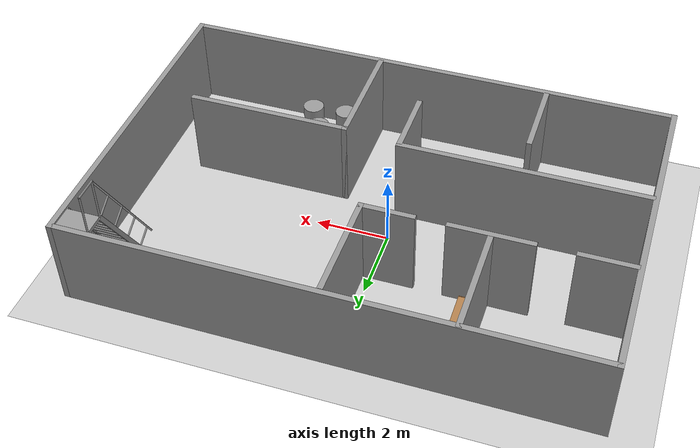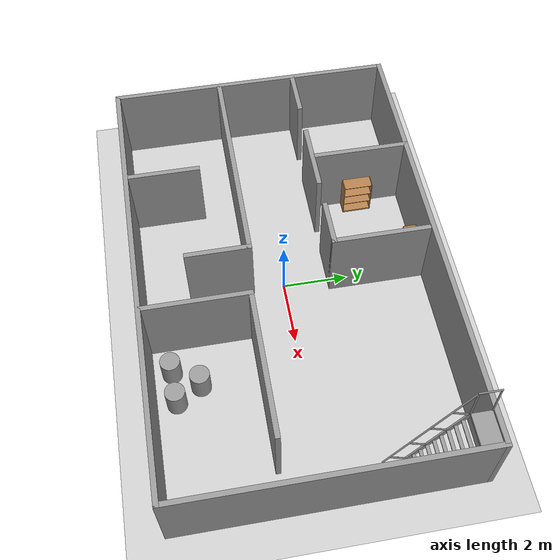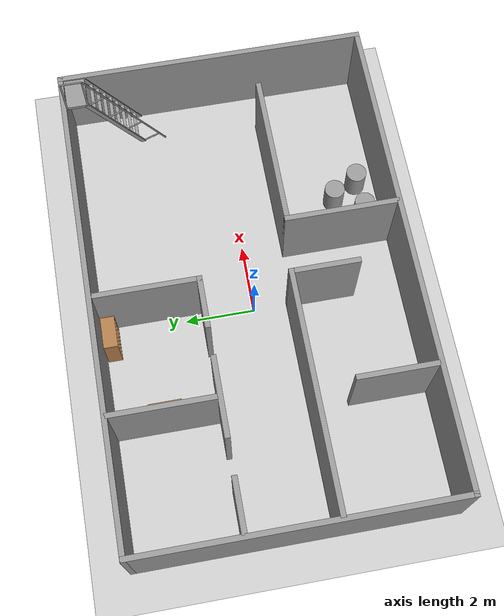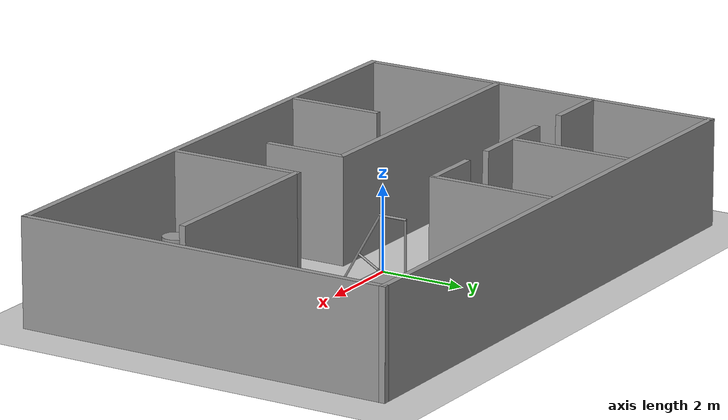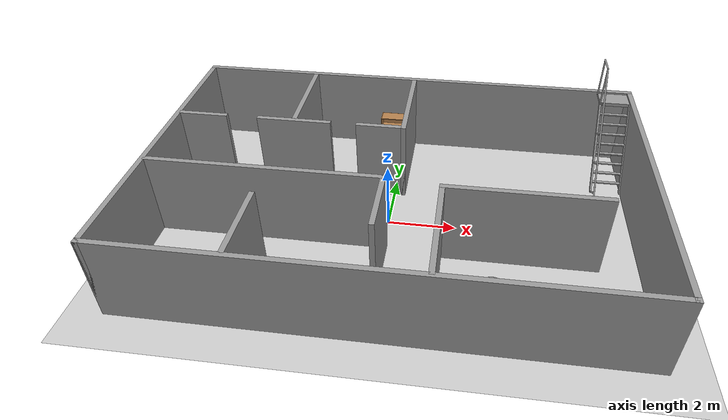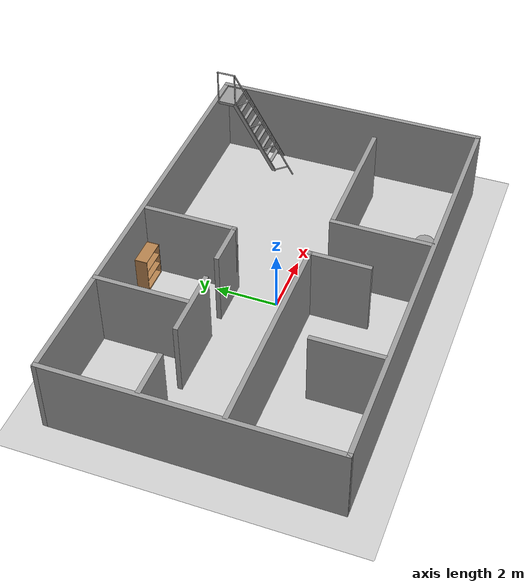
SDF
<sdf version="1.7">
 <world name="default">
  <light name="sun" type="directional">
   <pose>0 0 10 0 -0 0</pose>
   <diffuse>0.8 0.8 0.8 1</diffuse>
   <specular>0.2 0.2 0.2 1</specular>
   <attenuation>
    <range>1000</range>
    <constant>0.9</constant>
    <linear>0.01</linear>
    <quadratic>0.001</quadratic>
   </attenuation>
   <direction>-0.5 0.1 -0.9</direction>
   <spot><inner_angle>0</inner_angle><outer_angle>0</outer_angle><falloff>0</falloff></spot>
  </light>
  <model name="ground_plane">
   <static>1</static>
   <link name="link">
    <collision name="collision">
     <geometry><plane><normal>0 0 1</normal><size>100 100</size></plane></geometry>
     <surface>
      <contact><collide_bitmask>65535</collide_bitmask></contact>
      <friction><ode><mu>100</mu><mu2>50</mu2></ode></friction>
     </surface>
    </collision>
    <visual name="visual">
     <cast_shadows>0</cast_shadows>
     <geometry><plane><normal>0 0 1</normal><size>100 100</size></plane></geometry>
     <material>
      <script><uri>file://media/materials/scripts/gazebo.material</uri><name>Gazebo/Grey</name></script>
     </material>
    </visual>
   </link>
  </model>
  <gravity>0 0 -9.8</gravity>
  <magnetic_field>6e-06 2.3e-05 -4.2e-05</magnetic_field>
  <atmosphere type="adiabatic"/>
  <physics type="ode">
   <max_step_size>0.001</max_step_size>
   <real_time_factor>1</real_time_factor>
   <real_time_update_rate>1000</real_time_update_rate>
  </physics>
  <scene><ambient>0.4 0.4 0.4 1</ambient><background>0.7 0.7 0.7 1</background><shadows>1</shadows></scene>
  <spherical_coordinates>
   <surface_model>EARTH_WGS84</surface_model>
   <latitude_deg>0</latitude_deg>
   <longitude_deg>0</longitude_deg>
   <elevation>0</elevation>
   <heading_deg>0</heading_deg>
  </spherical_coordinates>
  <model name="lager">
   <pose>0.258134 0.029976 0 0 -0 0</pose>
   <link name="Wall_0">
    <collision name="Wall_0_Collision">
     <geometry><box><size>14 0.15 2.5</size></box></geometry>
     <pose>0 0 1.25 0 -0 0</pose>
    </collision>
    <visual name="Wall_0_Visual">
     <pose>0 0 1.25 0 -0 0</pose>
     <geometry><box><size>14 0.15 2.5</size></box></geometry>
     <material>
      <script><uri>file://media/materials/scripts/gazebo.material</uri><name>Gazebo/Grey</name></script>
      <ambient>1 1 1 1</ambient>
     </material>
     <meta><layer>0</layer></meta>
    </visual>
    <pose>0 -4.425 0 0 -0 0</pose>
   </link>
   <link name="Wall_1">
    <collision name="Wall_1_Collision">
     <geometry><box><size>9 0.15 2.5</size></box></geometry>
     <pose>0 0 1.25 0 -0 0</pose>
    </collision>
    <visual name="Wall_1_Visual">
     <pose>0 0 1.25 0 -0 0</pose>
     <geometry><box><size>9 0.15 2.5</size></box></geometry>
     <material>
      <script><uri>file://media/materials/scripts/gazebo.material</uri><name>Gazebo/Grey</name></script>
      <ambient>1 1 1 1</ambient>
     </material>
     <meta><layer>0</layer></meta>
    </visual>
    <pose>6.925 0 0 0 -0 1.5708</pose>
   </link>
   <link name="Wall_12">
    <collision name="Wall_12_Collision">
     <geometry><box><size>3 0.15 2.5</size></box></geometry>
     <pose>0 0 1.25 0 -0 0</pose>
    </collision>
    <visual name="Wall_12_Visual">
     <pose>0 0 1.25 0 -0 0</pose>
     <geometry><box><size>3 0.15 2.5</size></box></geometry>
     <material>
      <script><uri>file://media/materials/scripts/gazebo.material</uri><name>Gazebo/Grey</name></script>
      <ambient>1 1 1 1</ambient>
     </material>
     <meta><layer>0</layer></meta>
    </visual>
    <pose>-3.31696 2.9739 0 0 -0 -1.5708</pose>
   </link>
   <link name="Wall_14">
    <collision name="Wall_14_Collision">
     <geometry><box><size>1.5 0.15 2.5</size></box></geometry>
     <pose>0 0 1.25 0 -0 0</pose>
    </collision>
    <visual name="Wall_14_Visual">
     <pose>0 0 1.25 0 -0 0</pose>
     <geometry><box><size>1.5 0.15 2.5</size></box></geometry>
     <material>
      <script><uri>file://media/materials/scripts/gazebo.material</uri><name>Gazebo/Grey</name></script>
      <ambient>1 1 1 1</ambient>
     </material>
     <meta><layer>0</layer></meta>
    </visual>
    <pose>-0.672064 1.41979 0 0 -0 0</pose>
   </link>
   <link name="Wall_17">
    <collision name="Wall_17_Collision">
     <geometry><box><size>3 0.15 2.5</size></box></geometry>
     <pose>0 0 1.25 0 -0 0</pose>
    </collision>
    <visual name="Wall_17_Visual">
     <pose>0 0 1.25 0 -0 0</pose>
     <geometry><box><size>3 0.15 2.5</size></box></geometry>
     <material>
      <script><uri>file://media/materials/scripts/gazebo.material</uri><name>Gazebo/Grey</name></script>
      <ambient>1 1 1 1</ambient>
     </material>
     <meta><layer>0</layer></meta>
    </visual>
    <pose>0.002936 2.84479 0 0 -0 1.5708</pose>
   </link>
   <link name="Wall_2">
    <collision name="Wall_2_Collision">
     <geometry><box><size>14 0.15 2.5</size></box></geometry>
     <pose>0 0 1.25 0 -0 0</pose>
    </collision>
    <visual name="Wall_2_Visual">
     <pose>0 0 1.25 0 -0 0</pose>
     <geometry><box><size>14 0.15 2.5</size></box></geometry>
     <material>
      <script><uri>file://media/materials/scripts/gazebo.material</uri><name>Gazebo/Grey</name></script>
      <ambient>1 1 1 1</ambient>
     </material>
     <meta><layer>0</layer></meta>
    </visual>
    <pose>0 4.425 0 0 -0 3.14159</pose>
   </link>
   <link name="Wall_20">
    <collision name="Wall_20_Collision">
     <geometry><box><size>6.75 0.15 2.5</size></box></geometry>
     <pose>0 0 1.25 0 -0 0</pose>
    </collision>
    <visual name="Wall_20_Visual">
     <pose>0 0 1.25 0 -0 0</pose>
     <geometry><box><size>6.75 0.15 2.5</size></box></geometry>
     <material>
      <script><uri>file://media/materials/scripts/gazebo.material</uri><name>Gazebo/Grey</name></script>
      <ambient>1 1 1 1</ambient>
     </material>
     <meta><layer>0</layer></meta>
    </visual>
    <pose>-3.52683 -1.05818 0 0 -0 0</pose>
   </link>
   <link name="Wall_21">
    <collision name="Wall_21_Collision">
     <geometry><box><size>2 0.15 2.5</size></box></geometry>
     <pose>0 0 1.25 0 -0 0</pose>
    </collision>
    <visual name="Wall_21_Visual">
     <pose>0 0 1.25 0 -0 0</pose>
     <geometry><box><size>2 0.15 2.5</size></box></geometry>
     <material>
      <script><uri>file://media/materials/scripts/gazebo.material</uri><name>Gazebo/Grey</name></script>
      <ambient>1 1 1 1</ambient>
     </material>
     <meta><layer>0</layer></meta>
    </visual>
    <pose>-0.226825 -1.98318 0 0 -0 -1.5708</pose>
   </link>
   <link name="Wall_23">
    <collision name="Wall_23_Collision">
     <geometry><box><size>3.25 0.15 2.5</size></box></geometry>
     <pose>0 0 1.25 0 -0 0</pose>
    </collision>
    <visual name="Wall_23_Visual">
     <pose>0 0 1.25 0 -0 0</pose>
     <geometry><box><size>3.25 0.15 2.5</size></box></geometry>
     <material>
      <script><uri>file://media/materials/scripts/gazebo.material</uri><name>Gazebo/Grey</name></script>
      <ambient>1 1 1 1</ambient>
     </material>
     <meta><layer>0</layer></meta>
    </visual>
    <pose>1.34365 -2.79389 0 0 -0 1.5708</pose>
   </link>
   <link name="Wall_24">
    <collision name="Wall_24_Collision">
     <geometry><box><size>4.5 0.15 2.5</size></box></geometry>
     <pose>0 0 1.25 0 -0 0</pose>
    </collision>
    <visual name="Wall_24_Visual">
     <pose>0 0 1.25 0 -0 0</pose>
     <geometry><box><size>4.5 0.15 2.5</size></box></geometry>
     <material>
      <script><uri>file://media/materials/scripts/gazebo.material</uri><name>Gazebo/Grey</name></script>
      <ambient>1 1 1 1</ambient>
     </material>
     <meta><layer>0</layer></meta>
    </visual>
    <pose>3.51865 -1.24389 0 0 -0 0</pose>
   </link>
   <link name="Wall_26">
    <collision name="Wall_26_Collision">
     <geometry><box><size>2.25 0.15 2.5</size></box></geometry>
     <pose>0 0 1.25 0 -0 0</pose>
    </collision>
    <visual name="Wall_26_Visual">
     <pose>0 0 1.25 0 -0 0</pose>
     <geometry><box><size>2.25 0.15 2.5</size></box></geometry>
     <material>
      <script><uri>file://media/materials/scripts/gazebo.material</uri><name>Gazebo/Grey</name></script>
      <ambient>1 1 1 1</ambient>
     </material>
     <meta><layer>0</layer></meta>
    </visual>
    <pose>-3.45349 -3.25008 0 0 -0 1.5708</pose>
   </link>
   <link name="Wall_3">
    <collision name="Wall_3_Collision">
     <geometry><box><size>9 0.15 2.5</size></box></geometry>
     <pose>0 0 1.25 0 -0 0</pose>
    </collision>
    <visual name="Wall_3_Visual">
     <pose>0 0 1.25 0 -0 0</pose>
     <geometry><box><size>9 0.15 2.5</size></box></geometry>
     <material>
      <script><uri>file://media/materials/scripts/gazebo.material</uri><name>Gazebo/Grey</name></script>
      <ambient>1 1 1 1</ambient>
     </material>
     <meta><layer>0</layer></meta>
    </visual>
    <pose>-6.925 0 0 0 -0 -1.5708</pose>
   </link>
   <link name="Wall_6">
    <collision name="Wall_6_Collision">
     <geometry><box><size>1.5 0.15 2.5</size></box></geometry>
     <pose>0 0 1.25 0 -0 0</pose>
    </collision>
    <visual name="Wall_6_Visual">
     <pose>0 0 1.25 0 -0 0</pose>
     <geometry><box><size>1.5 0.15 2.5</size></box></geometry>
     <material>
      <script><uri>file://media/materials/scripts/gazebo.material</uri><name>Gazebo/Grey</name></script>
      <ambient>1 1 1 1</ambient>
     </material>
     <meta><layer>0</layer></meta>
    </visual>
    <pose>-6.13997 1.41183 0 0 -0 0</pose>
   </link>
   <link name="Wall_8">
    <collision name="Wall_8_Collision">
     <geometry><box><size>2.25 0.15 2.5</size></box></geometry>
     <pose>0 0 1.25 0 -0 0</pose>
    </collision>
    <visual name="Wall_8_Visual">
     <pose>0 0 1.25 0 -0 0</pose>
     <geometry><box><size>2.25 0.15 2.5</size></box></geometry>
     <material>
      <script><uri>file://media/materials/scripts/gazebo.material</uri><name>Gazebo/Grey</name></script>
      <ambient>1 1 1 1</ambient>
     </material>
     <meta><layer>0</layer></meta>
    </visual>
    <pose>-3.31636 1.41255 0 0 -0 0</pose>
   </link>
   <static>1</static>
  </model>
  <model name="unit_cylinder">
   <pose>2.49064 -3.77927 0.434313 0 -0 0</pose>
   <link name="link">
    <inertial>
     <mass>1</mass>
     <inertia><ixx>0.145833</ixx><ixy>0</ixy><ixz>0</ixz><iyy>0.145833</iyy><iyz>0</iyz><izz>0.125</izz></inertia>
    </inertial>
    <collision name="collision">
     <geometry><cylinder><radius>0.295515</radius><length>0.86864</length></cylinder></geometry>
    </collision>
    <visual name="visual">
     <geometry><cylinder><radius>0.295515</radius><length>0.86864</length></cylinder></geometry>
     <material>
      <script><name>Gazebo/Grey</name><uri>file://media/materials/scripts/gazebo.material</uri></script>
     </material>
    </visual>
   </link>
  </model>
  <model name="unit_cylinder_clone">
   <pose>3.47392 -3.73803 0.43432 0 -0 0</pose>
   <link name="link">
    <inertial>
     <mass>1</mass>
     <inertia><ixx>0.145833</ixx><ixy>0</ixy><ixz>0</ixz><iyy>0.145833</iyy><iyz>0</iyz><izz>0.125</izz></inertia>
    </inertial>
    <collision name="collision">
     <geometry><cylinder><radius>0.295515</radius><length>0.86864</length></cylinder></geometry>
    </collision>
    <visual name="visual">
     <geometry><cylinder><radius>0.295515</radius><length>0.86864</length></cylinder></geometry>
     <material>
      <script><name>Gazebo/Grey</name><uri>file://media/materials/scripts/gazebo.material</uri></script>
     </material>
    </visual>
   </link>
  </model>
  <model name="unit_cylinder_clone_0">
   <pose>3.04958 -2.98707 0.434318 0 -0 0</pose>
   <link name="link">
    <inertial>
     <mass>1</mass>
     <inertia><ixx>0.145833</ixx><ixy>0</ixy><ixz>0</ixz><iyy>0.145833</iyy><iyz>0</iyz><izz>0.125</izz></inertia>
    </inertial>
    <collision name="collision">
     <geometry><cylinder><radius>0.295515</radius><length>0.86864</length></cylinder></geometry>
    </collision>
    <visual name="visual">
     <geometry><cylinder><radius>0.295515</radius><length>0.86864</length></cylinder></geometry>
     <material>
      <script><name>Gazebo/Grey</name><uri>file://media/materials/scripts/gazebo.material</uri></script>
     </material>
    </visual>
   </link>
  </model>
  <model name="bookshelf">
   <static>1</static>
   <link name="link">
    <inertial><mass>1</mass></inertial>
    <collision name="back">
     <pose>0 0.005 0.6 0 -0 0</pose>
     <geometry><box><size>0.9 0.01 1.2</size></box></geometry>
    </collision>
    <visual name="visual1">
     <pose>0 0.005 0.6 0 -0 0</pose>
     <geometry><box><size>0.9 0.01 1.2</size></box></geometry>
     <material>
      <script><uri>file://media/materials/scripts/gazebo.material</uri><name>Gazebo/Wood</name></script>
     </material>
    </visual>
    <collision name="left_side">
     <pose>0.45 -0.195 0.6 0 -0 0</pose>
     <geometry><box><size>0.02 0.4 1.2</size></box></geometry>
    </collision>
    <visual name="visual2">
     <pose>0.45 -0.195 0.6 0 -0 0</pose>
     <geometry><box><size>0.02 0.4 1.2</size></box></geometry>
     <material>
      <script><uri>file://media/materials/scripts/gazebo.material</uri><name>Gazebo/Wood</name></script>
     </material>
    </visual>
    <collision name="right_side">
     <pose>-0.45 -0.195 0.6 0 -0 0</pose>
     <geometry><box><size>0.02 0.4 1.2</size></box></geometry>
    </collision>
    <visual name="visual3">
     <pose>-0.45 -0.195 0.6 0 -0 0</pose>
     <geometry><box><size>0.02 0.4 1.2</size></box></geometry>
     <material>
      <script><uri>file://media/materials/scripts/gazebo.material</uri><name>Gazebo/Wood</name></script>
     </material>
    </visual>
    <collision name="bottom">
     <pose>0 -0.195 0.03 0 -0 0</pose>
     <geometry><box><size>0.88 0.4 0.06</size></box></geometry>
    </collision>
    <visual name="visual4">
     <pose>0 -0.195 0.03 0 -0 0</pose>
     <geometry><box><size>0.88 0.4 0.06</size></box></geometry>
     <material>
      <script><uri>file://media/materials/scripts/gazebo.material</uri><name>Gazebo/Wood</name></script>
     </material>
    </visual>
    <collision name="top">
     <pose>0 -0.195 1.19 0 -0 0</pose>
     <geometry><box><size>0.88 0.4 0.02</size></box></geometry>
    </collision>
    <visual name="visual5">
     <pose>0 -0.195 1.19 0 -0 0</pose>
     <geometry><box><size>0.88 0.4 0.02</size></box></geometry>
     <material>
      <script><uri>file://media/materials/scripts/gazebo.material</uri><name>Gazebo/Wood</name></script>
     </material>
    </visual>
    <collision name="low_shelf">
     <pose>0 -0.195 0.43 0 -0 0</pose>
     <geometry><box><size>0.88 0.4 0.02</size></box></geometry>
    </collision>
    <visual name="visual6">
     <pose>0 -0.195 0.43 0 -0 0</pose>
     <geometry><box><size>0.88 0.4 0.02</size></box></geometry>
     <material>
      <script><uri>file://media/materials/scripts/gazebo.material</uri><name>Gazebo/Wood</name></script>
     </material>
    </visual>
    <collision name="high_shelf">
     <pose>0 -0.195 0.8 0 -0 0</pose>
     <geometry><box><size>0.88 0.4 0.02</size></box></geometry>
    </collision>
    <visual name="visual7">
     <pose>0 -0.195 0.8 0 -0 0</pose>
     <geometry><box><size>0.88 0.4 0.02</size></box></geometry>
     <material>
      <script><uri>file://media/materials/scripts/gazebo.material</uri><name>Gazebo/Wood</name></script>
     </material>
    </visual>
   </link>
   <pose>-0.350126 4.3451 0 0 -0 0</pose>
  </model>
  <model name="bookshelf_0">
   <static>1</static>
   <link name="link">
    <inertial><mass>1</mass></inertial>
    <collision name="back">
     <pose>0 0.005 0.6 0 -0 0</pose>
     <geometry><box><size>0.9 0.01 1.2</size></box></geometry>
    </collision>
    <visual name="visual1">
     <pose>0 0.005 0.6 0 -0 0</pose>
     <geometry><box><size>0.9 0.01 1.2</size></box></geometry>
     <material>
      <script><uri>file://media/materials/scripts/gazebo.material</uri><name>Gazebo/Wood</name></script>
     </material>
    </visual>
    <collision name="left_side">
     <pose>0.45 -0.195 0.6 0 -0 0</pose>
     <geometry><box><size>0.02 0.4 1.2</size></box></geometry>
    </collision>
    <visual name="visual2">
     <pose>0.45 -0.195 0.6 0 -0 0</pose>
     <geometry><box><size>0.02 0.4 1.2</size></box></geometry>
     <material>
      <script><uri>file://media/materials/scripts/gazebo.material</uri><name>Gazebo/Wood</name></script>
     </material>
    </visual>
    <collision name="right_side">
     <pose>-0.45 -0.195 0.6 0 -0 0</pose>
     <geometry><box><size>0.02 0.4 1.2</size></box></geometry>
    </collision>
    <visual name="visual3">
     <pose>-0.45 -0.195 0.6 0 -0 0</pose>
     <geometry><box><size>0.02 0.4 1.2</size></box></geometry>
     <material>
      <script><uri>file://media/materials/scripts/gazebo.material</uri><name>Gazebo/Wood</name></script>
     </material>
    </visual>
    <collision name="bottom">
     <pose>0 -0.195 0.03 0 -0 0</pose>
     <geometry><box><size>0.88 0.4 0.06</size></box></geometry>
    </collision>
    <visual name="visual4">
     <pose>0 -0.195 0.03 0 -0 0</pose>
     <geometry><box><size>0.88 0.4 0.06</size></box></geometry>
     <material>
      <script><uri>file://media/materials/scripts/gazebo.material</uri><name>Gazebo/Wood</name></script>
     </material>
    </visual>
    <collision name="top">
     <pose>0 -0.195 1.19 0 -0 0</pose>
     <geometry><box><size>0.88 0.4 0.02</size></box></geometry>
    </collision>
    <visual name="visual5">
     <pose>0 -0.195 1.19 0 -0 0</pose>
     <geometry><box><size>0.88 0.4 0.02</size></box></geometry>
     <material>
      <script><uri>file://media/materials/scripts/gazebo.material</uri><name>Gazebo/Wood</name></script>
     </material>
    </visual>
    <collision name="low_shelf">
     <pose>0 -0.195 0.43 0 -0 0</pose>
     <geometry><box><size>0.88 0.4 0.02</size></box></geometry>
    </collision>
    <visual name="visual6">
     <pose>0 -0.195 0.43 0 -0 0</pose>
     <geometry><box><size>0.88 0.4 0.02</size></box></geometry>
     <material>
      <script><uri>file://media/materials/scripts/gazebo.material</uri><name>Gazebo/Wood</name></script>
     </material>
    </visual>
    <collision name="high_shelf">
     <pose>0 -0.195 0.8 0 -0 0</pose>
     <geometry><box><size>0.88 0.4 0.02</size></box></geometry>
    </collision>
    <visual name="visual7">
     <pose>0 -0.195 0.8 0 -0 0</pose>
     <geometry><box><size>0.88 0.4 0.02</size></box></geometry>
     <material>
      <script><uri>file://media/materials/scripts/gazebo.material</uri><name>Gazebo/Wood</name></script>
     </material>
    </visual>
   </link>
   <pose>-2.9791 2.91464 0 0 -0 1.57501</pose>
  </model>
  <model name="ladder_60deg_1rails">
   <static>1</static>
   <link name="step0">
    <pose>0 0.15396 0.266667 0 -0 0</pose>
    <inertial>
     <mass>9.75482</mass>
     <inertia>
      <ixx>0.00957124</ixx>
      <iyy>0.65963</iyy>
      <izz>0.666842</izz>
      <ixy>0</ixy>
      <ixz>0</ixz>
      <iyz>0</iyz>
     </inertia>
    </inertial>
    <collision name="collision"><geometry><box><size>0.9 0.1016 0.0381</size></box></geometry></collision>
    <visual name="visual">
     <geometry><box><size>0.9 0.1016 0.0381</size></box></geometry>
     <material>
      <script><uri>file://media/materials/scripts/gazebo.material</uri><name>Gazebo/Grey</name></script>
     </material>
    </visual>
   </link>
   <link name="step1">
    <pose>0 0.30792 0.533333 0 -0 0</pose>
    <inertial>
     <mass>9.75482</mass>
     <inertia>
      <ixx>0.00957124</ixx>
      <iyy>0.65963</iyy>
      <izz>0.666842</izz>
      <ixy>0</ixy>
      <ixz>0</ixz>
      <iyz>0</iyz>
     </inertia>
    </inertial>
    <collision name="collision"><geometry><box><size>0.9 0.1016 0.0381</size></box></geometry></collision>
    <visual name="visual">
     <geometry><box><size>0.9 0.1016 0.0381</size></box></geometry>
     <material>
      <script><uri>file://media/materials/scripts/gazebo.material</uri><name>Gazebo/Grey</name></script>
     </material>
    </visual>
   </link>
   <link name="step2">
    <pose>0 0.46188 0.8 0 -0 0</pose>
    <inertial>
     <mass>9.75482</mass>
     <inertia>
      <ixx>0.00957124</ixx>
      <iyy>0.65963</iyy>
      <izz>0.666842</izz>
      <ixy>0</ixy>
      <ixz>0</ixz>
      <iyz>0</iyz>
     </inertia>
    </inertial>
    <collision name="collision"><geometry><box><size>0.9 0.1016 0.0381</size></box></geometry></collision>
    <visual name="visual">
     <geometry><box><size>0.9 0.1016 0.0381</size></box></geometry>
     <material>
      <script><uri>file://media/materials/scripts/gazebo.material</uri><name>Gazebo/Grey</name></script>
     </material>
    </visual>
   </link>
   <link name="step3">
    <pose>0 0.61584 1.06667 0 -0 0</pose>
    <inertial>
     <mass>9.75482</mass>
     <inertia>
      <ixx>0.00957124</ixx>
      <iyy>0.65963</iyy>
      <izz>0.666842</izz>
      <ixy>0</ixy>
      <ixz>0</ixz>
      <iyz>0</iyz>
     </inertia>
    </inertial>
    <collision name="collision"><geometry><box><size>0.9 0.1016 0.0381</size></box></geometry></collision>
    <visual name="visual">
     <geometry><box><size>0.9 0.1016 0.0381</size></box></geometry>
     <material>
      <script><uri>file://media/materials/scripts/gazebo.material</uri><name>Gazebo/Grey</name></script>
     </material>
    </visual>
   </link>
   <link name="step4">
    <pose>0 0.7698 1.33333 0 -0 0</pose>
    <inertial>
     <mass>9.75482</mass>
     <inertia>
      <ixx>0.00957124</ixx>
      <iyy>0.65963</iyy>
      <izz>0.666842</izz>
      <ixy>0</ixy>
      <ixz>0</ixz>
      <iyz>0</iyz>
     </inertia>
    </inertial>
    <collision name="collision"><geometry><box><size>0.9 0.1016 0.0381</size></box></geometry></collision>
    <visual name="visual">
     <geometry><box><size>0.9 0.1016 0.0381</size></box></geometry>
     <material>
      <script><uri>file://media/materials/scripts/gazebo.material</uri><name>Gazebo/Grey</name></script>
     </material>
    </visual>
   </link>
   <link name="step5">
    <pose>0 0.92376 1.6 0 -0 0</pose>
    <inertial>
     <mass>9.75482</mass>
     <inertia>
      <ixx>0.00957124</ixx>
      <iyy>0.65963</iyy>
      <izz>0.666842</izz>
      <ixy>0</ixy>
      <ixz>0</ixz>
      <iyz>0</iyz>
     </inertia>
    </inertial>
    <collision name="collision"><geometry><box><size>0.9 0.1016 0.0381</size></box></geometry></collision>
    <visual name="visual">
     <geometry><box><size>0.9 0.1016 0.0381</size></box></geometry>
     <material>
      <script><uri>file://media/materials/scripts/gazebo.material</uri><name>Gazebo/Grey</name></script>
     </material>
    </visual>
   </link>
   <link name="step6">
    <pose>0 1.07772 1.86667 0 -0 0</pose>
    <inertial>
     <mass>9.75482</mass>
     <inertia>
      <ixx>0.00957124</ixx>
      <iyy>0.65963</iyy>
      <izz>0.666842</izz>
      <ixy>0</ixy>
      <ixz>0</ixz>
      <iyz>0</iyz>
     </inertia>
    </inertial>
    <collision name="collision"><geometry><box><size>0.9 0.1016 0.0381</size></box></geometry></collision>
    <visual name="visual">
     <geometry><box><size>0.9 0.1016 0.0381</size></box></geometry>
     <material>
      <script><uri>file://media/materials/scripts/gazebo.material</uri><name>Gazebo/Grey</name></script>
     </material>
    </visual>
   </link>
   <link name="step7">
    <pose>0 1.23168 2.13333 0 -0 0</pose>
    <inertial>
     <mass>9.75482</mass>
     <inertia>
      <ixx>0.00957124</ixx>
      <iyy>0.65963</iyy>
      <izz>0.666842</izz>
      <ixy>0</ixy>
      <ixz>0</ixz>
      <iyz>0</iyz>
     </inertia>
    </inertial>
    <collision name="collision"><geometry><box><size>0.9 0.1016 0.0381</size></box></geometry></collision>
    <visual name="visual">
     <geometry><box><size>0.9 0.1016 0.0381</size></box></geometry>
     <material>
      <script><uri>file://media/materials/scripts/gazebo.material</uri><name>Gazebo/Grey</name></script>
     </material>
    </visual>
   </link>
   <link name="landing">
    <pose>0 1.68564 2.4 0 -0 0</pose>
    <inertial>
     <mass>57.6072</mass>
     <inertia><ixx>1.73518</ixx><iyy>3.89545</iyy><izz>5.6167</izz><ixy>0</ixy><ixz>0</ixz><iyz>0</iyz></inertia>
    </inertial>
    <collision name="collision"><geometry><box><size>0.9 0.6 0.1016</size></box></geometry></collision>
    <visual name="visual">
     <geometry><box><size>0.9 0.6 0.1016</size></box></geometry>
     <material>
      <script><uri>file://media/materials/scripts/gazebo.material</uri><name>Gazebo/Grey</name></script>
     </material>
    </visual>
   </link>
   <link name="left_side_wall">
    <pose>-0.45 0.69282 1.2 1.0472 -0 0</pose>
    <collision name="collision"><geometry><box><size>0.0508 2.85128 0.13</size></box></geometry></collision>
    <visual name="visual">
     <geometry><box><size>0.0508 2.85128 0.13</size></box></geometry>
     <material>
      <script><uri>file://media/materials/scripts/gazebo.material</uri><name>Gazebo/Grey</name></script>
     </material>
    </visual>
   </link>
   <link name="right_side_wall">
    <pose>0.45 0.69282 1.2 1.0472 -0 0</pose>
    <collision name="collision"><geometry><box><size>0.0508 2.85128 0.13</size></box></geometry></collision>
    <visual name="visual">
     <geometry><box><size>0.0508 2.85128 0.13</size></box></geometry>
     <material>
      <script><uri>file://media/materials/scripts/gazebo.material</uri><name>Gazebo/Grey</name></script>
     </material>
    </visual>
   </link>
   <link name="left_railing_long">
    <pose>-0.45 0.34282 1.80622 -0.523599 0 0</pose>
    <collision name="collision">
     <geometry><cylinder><radius>0.02413</radius><length>4.17128</length></cylinder></geometry>
    </collision>
    <visual name="visual">
     <geometry><cylinder><radius>0.02413</radius><length>4.17128</length></cylinder></geometry>
     <material>
      <script><uri>file://media/materials/scripts/gazebo.material</uri><name>Gazebo/Grey</name></script>
     </material>
    </visual>
   </link>
   <link name="left_railing_upright0">
    <pose>-0.45 -0.274963 0.15875 1.0472 -0 0</pose>
    <collision name="collision">
     <geometry><cylinder><radius>0.02413</radius><length>0.541218</length></cylinder></geometry>
    </collision>
    <visual name="visual">
     <geometry><cylinder><radius>0.02413</radius><length>0.541218</length></cylinder></geometry>
     <material>
      <script><uri>file://media/materials/scripts/gazebo.material</uri><name>Gazebo/Grey</name></script>
     </material>
    </visual>
   </link>
   <link name="left_railing_upright1">
    <pose>-0.45 0.186917 0.95875 1.0472 -0 0</pose>
    <collision name="collision">
     <geometry><cylinder><radius>0.02413</radius><length>0.541218</length></cylinder></geometry>
    </collision>
    <visual name="visual">
     <geometry><cylinder><radius>0.02413</radius><length>0.541218</length></cylinder></geometry>
     <material>
      <script><uri>file://media/materials/scripts/gazebo.material</uri><name>Gazebo/Grey</name></script>
     </material>
    </visual>
   </link>
   <link name="left_railing_upright2">
    <pose>-0.45 0.648797 1.75875 1.0472 -0 0</pose>
    <collision name="collision">
     <geometry><cylinder><radius>0.02413</radius><length>0.541218</length></cylinder></geometry>
    </collision>
    <visual name="visual">
     <geometry><cylinder><radius>0.02413</radius><length>0.541218</length></cylinder></geometry>
     <material>
      <script><uri>file://media/materials/scripts/gazebo.material</uri><name>Gazebo/Grey</name></script>
     </material>
    </visual>
   </link>
   <link name="left_railing_upright3">
    <pose>-0.45 1.11068 2.55875 1.0472 -0 0</pose>
    <collision name="collision">
     <geometry><cylinder><radius>0.02413</radius><length>0.541218</length></cylinder></geometry>
    </collision>
    <visual name="visual">
     <geometry><cylinder><radius>0.02413</radius><length>0.541218</length></cylinder></geometry>
     <material>
      <script><uri>file://media/materials/scripts/gazebo.material</uri><name>Gazebo/Grey</name></script>
     </material>
    </visual>
   </link>
   <link name="left_railing_landing_top">
    <pose>-0.45 1.68564 3.61244 1.5708 -0 0</pose>
    <collision name="collision">
     <geometry><cylinder><radius>0.02413</radius><length>0.64826</length></cylinder></geometry>
    </collision>
    <visual name="visual">
     <geometry><cylinder><radius>0.02413</radius><length>0.64826</length></cylinder></geometry>
     <material>
      <script><uri>file://media/materials/scripts/gazebo.material</uri><name>Gazebo/Grey</name></script>
     </material>
    </visual>
   </link>
   <link name="left_railing_landing_upright_0">
    <pose>-0.45 1.38564 3.00622 0 -0 0</pose>
    <collision name="collision">
     <geometry><cylinder><radius>0.02413</radius><length>1.21244</length></cylinder></geometry>
    </collision>
    <visual name="visual">
     <geometry><cylinder><radius>0.02413</radius><length>1.21244</length></cylinder></geometry>
     <material>
      <script><uri>file://media/materials/scripts/gazebo.material</uri><name>Gazebo/Grey</name></script>
     </material>
    </visual>
   </link>
   <link name="left_railing_landing_upright_1">
    <pose>-0.45 1.98564 3.00622 0 -0 0</pose>
    <collision name="collision">
     <geometry><cylinder><radius>0.02413</radius><length>1.21244</length></cylinder></geometry>
    </collision>
    <visual name="visual">
     <geometry><cylinder><radius>0.02413</radius><length>1.21244</length></cylinder></geometry>
     <material>
      <script><uri>file://media/materials/scripts/gazebo.material</uri><name>Gazebo/Grey</name></script>
     </material>
    </visual>
   </link>
   <pose>6.65479 2.38011 0 0 -0 0</pose>
  </model>
 </world>
</sdf>
